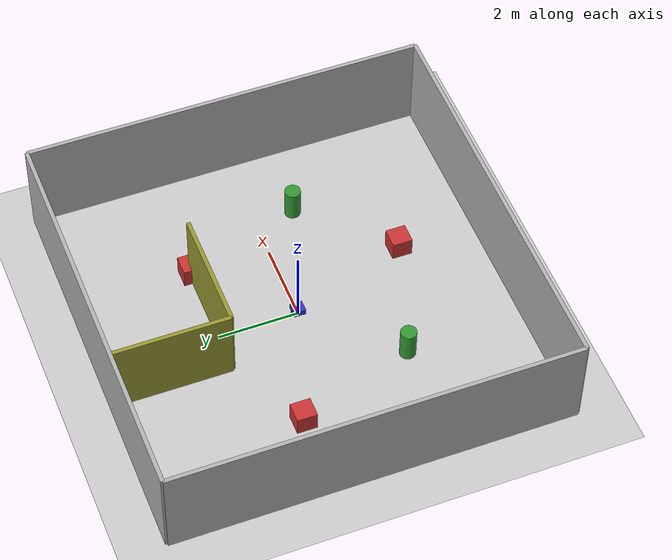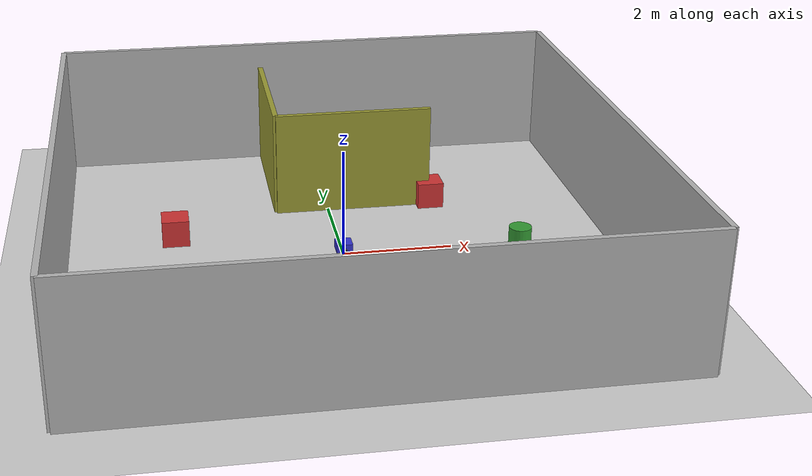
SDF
<?xml version="1.0"?>
<sdf version="1.9">
  <world name="slam_test">

    <!-- Physics -->
    <physics name="1ms" type="ignored">
      <max_step_size>0.001</max_step_size>
      <real_time_factor>1.0</real_time_factor>
    </physics>

    <!-- Plugins -->
    <plugin filename="gz-sim-physics-system" name="gz::sim::systems::Physics"/>
    <plugin filename="gz-sim-user-commands-system" name="gz::sim::systems::UserCommands"/>
    <plugin filename="gz-sim-scene-broadcaster-system" name="gz::sim::systems::SceneBroadcaster"/>
    <plugin filename="gz-sim-sensors-system" name="gz::sim::systems::Sensors">
      <render_engine>ogre2</render_engine>
    </plugin>
    <plugin filename="gz-sim-contact-system" name="gz::sim::systems::Contact"/>

    <!-- Sun -->
    <light type="directional" name="sun">
      <cast_shadows>true</cast_shadows>
      <pose>0 0 10 0 0 0</pose>
      <diffuse>0.8 0.8 0.8 1</diffuse>
      <specular>0.2 0.2 0.2 1</specular>
      <attenuation>
        <range>1000</range>
        <constant>0.9</constant>
        <linear>0.01</linear>
        <quadratic>0.001</quadratic>
      </attenuation>
      <direction>-0.5 0.1 -0.9</direction>
    </light>

    <!-- Ground plane -->
    <model name="ground_plane">
      <static>true</static>
      <link name="link">
        <collision name="collision">
          <geometry>
            <plane><normal>0 0 1</normal><size>100 100</size></plane>
          </geometry>
        </collision>
        <visual name="visual">
          <geometry>
            <plane><normal>0 0 1</normal><size>100 100</size></plane>
          </geometry>
          <material>
            <ambient>0.8 0.8 0.8 1</ambient>
            <diffuse>0.8 0.8 0.8 1</diffuse>
          </material>
        </visual>
      </link>
    </model>

    <!-- ========== Room walls (10m x 10m, centered at origin) ========== -->

    <!-- North wall -->
    <model name="wall_north">
      <static>true</static>
      <pose>0 5 1.25 0 0 0</pose>
      <link name="link">
        <collision name="collision">
          <geometry><box><size>10 0.1 2.5</size></box></geometry>
        </collision>
        <visual name="visual">
          <geometry><box><size>10 0.1 2.5</size></box></geometry>
          <material>
            <ambient>0.7 0.7 0.7 1</ambient>
            <diffuse>0.7 0.7 0.7 1</diffuse>
          </material>
        </visual>
      </link>
    </model>

    <!-- South wall -->
    <model name="wall_south">
      <static>true</static>
      <pose>0 -5 1.25 0 0 0</pose>
      <link name="link">
        <collision name="collision">
          <geometry><box><size>10 0.1 2.5</size></box></geometry>
        </collision>
        <visual name="visual">
          <geometry><box><size>10 0.1 2.5</size></box></geometry>
          <material>
            <ambient>0.7 0.7 0.7 1</ambient>
            <diffuse>0.7 0.7 0.7 1</diffuse>
          </material>
        </visual>
      </link>
    </model>

    <!-- East wall -->
    <model name="wall_east">
      <static>true</static>
      <pose>5 0 1.25 0 0 0</pose>
      <link name="link">
        <collision name="collision">
          <geometry><box><size>0.1 10 2.5</size></box></geometry>
        </collision>
        <visual name="visual">
          <geometry><box><size>0.1 10 2.5</size></box></geometry>
          <material>
            <ambient>0.7 0.7 0.7 1</ambient>
            <diffuse>0.7 0.7 0.7 1</diffuse>
          </material>
        </visual>
      </link>
    </model>

    <!-- West wall -->
    <model name="wall_west">
      <static>true</static>
      <pose>-5 0 1.25 0 0 0</pose>
      <link name="link">
        <collision name="collision">
          <geometry><box><size>0.1 10 2.5</size></box></geometry>
        </collision>
        <visual name="visual">
          <geometry><box><size>0.1 10 2.5</size></box></geometry>
          <material>
            <ambient>0.7 0.7 0.7 1</ambient>
            <diffuse>0.7 0.7 0.7 1</diffuse>
          </material>
        </visual>
      </link>
    </model>

    <!-- ========== Obstacles ========== -->

    <!-- Box 1 -->
    <model name="box1">
      <static>true</static>
      <pose>2 2 0.25 0 0 0</pose>
      <link name="link">
        <collision name="collision">
          <geometry><box><size>0.5 0.5 0.5</size></box></geometry>
        </collision>
        <visual name="visual">
          <geometry><box><size>0.5 0.5 0.5</size></box></geometry>
          <material>
            <ambient>0.8 0.2 0.2 1</ambient>
            <diffuse>0.8 0.2 0.2 1</diffuse>
          </material>
        </visual>
      </link>
    </model>

    <!-- Box 2 -->
    <model name="box2">
      <static>true</static>
      <pose>-3 1 0.25 0 0 0</pose>
      <link name="link">
        <collision name="collision">
          <geometry><box><size>0.5 0.5 0.5</size></box></geometry>
        </collision>
        <visual name="visual">
          <geometry><box><size>0.5 0.5 0.5</size></box></geometry>
          <material>
            <ambient>0.8 0.2 0.2 1</ambient>
            <diffuse>0.8 0.2 0.2 1</diffuse>
          </material>
        </visual>
      </link>
    </model>

    <!-- Box 3 -->
    <model name="box3">
      <static>true</static>
      <pose>1 -3 0.25 0 0 0</pose>
      <link name="link">
        <collision name="collision">
          <geometry><box><size>0.5 0.5 0.5</size></box></geometry>
        </collision>
        <visual name="visual">
          <geometry><box><size>0.5 0.5 0.5</size></box></geometry>
          <material>
            <ambient>0.8 0.2 0.2 1</ambient>
            <diffuse>0.8 0.2 0.2 1</diffuse>
          </material>
        </visual>
      </link>
    </model>

    <!-- Cylinder 1 -->
    <model name="cylinder1">
      <static>true</static>
      <pose>-2 -2 0.4 0 0 0</pose>
      <link name="link">
        <collision name="collision">
          <geometry><cylinder><radius>0.2</radius><length>0.8</length></cylinder></geometry>
        </collision>
        <visual name="visual">
          <geometry><cylinder><radius>0.2</radius><length>0.8</length></cylinder></geometry>
          <material>
            <ambient>0.2 0.6 0.2 1</ambient>
            <diffuse>0.2 0.6 0.2 1</diffuse>
          </material>
        </visual>
      </link>
    </model>

    <!-- Cylinder 2 -->
    <model name="cylinder2">
      <static>true</static>
      <pose>3 -1 0.4 0 0 0</pose>
      <link name="link">
        <collision name="collision">
          <geometry><cylinder><radius>0.2</radius><length>0.8</length></cylinder></geometry>
        </collision>
        <visual name="visual">
          <geometry><cylinder><radius>0.2</radius><length>0.8</length></cylinder></geometry>
          <material>
            <ambient>0.2 0.6 0.2 1</ambient>
            <diffuse>0.2 0.6 0.2 1</diffuse>
          </material>
        </visual>
      </link>
    </model>

    <!-- L-shaped inner wall -->
    <model name="l_wall">
      <static>true</static>
      <link name="link">

        <!-- Vertical segment -->
        <collision name="collision_v">
          <pose>-1 3.5 1.0 0 0 0</pose>
          <geometry><box><size>0.1 3.0 2.0</size></box></geometry>
        </collision>
        <visual name="visual_v">
          <pose>-1 3.5 1.0 0 0 0</pose>
          <geometry><box><size>0.1 3.0 2.0</size></box></geometry>
          <material>
            <ambient>0.6 0.6 0.2 1</ambient>
            <diffuse>0.6 0.6 0.2 1</diffuse>
          </material>
        </visual>

        <!-- Horizontal segment -->
        <collision name="collision_h">
          <pose>0.5 2.0 1.0 0 0 0</pose>
          <geometry><box><size>3.0 0.1 2.0</size></box></geometry>
        </collision>
        <visual name="visual_h">
          <pose>0.5 2.0 1.0 0 0 0</pose>
          <geometry><box><size>3.0 0.1 2.0</size></box></geometry>
          <material>
            <ambient>0.6 0.6 0.2 1</ambient>
            <diffuse>0.6 0.6 0.2 1</diffuse>
          </material>
        </visual>

      </link>
    </model>

    <!-- ========== Robot ========== -->
    <include>
      <uri>file:///home/hello/lidar-slam/models/sim_robot</uri>
      <name>sim_robot</name>
      <pose>0 0 0.075 0 0 0</pose>
    </include>

  </world>
</sdf>

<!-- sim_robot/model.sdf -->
<sdf version="1.9">
  <model name="sim_robot">
    <self_collide>false</self_collide>

    <!-- Chassis -->
    <link name="base_link">
      <pose>0 0 0.1 0 0 0</pose>
      <inertial>
        <mass>5.0</mass>
        <inertia>
          <ixx>0.028</ixx>
          <ixy>0</ixy>
          <ixz>0</ixz>
          <iyy>0.028</iyy>
          <iyz>0</iyz>
          <izz>0.045</izz>
        </inertia>
      </inertial>
      <collision name="chassis_collision">
        <geometry>
          <box><size>0.3 0.3 0.15</size></box>
        </geometry>
      </collision>
      <visual name="chassis_visual">
        <geometry>
          <box><size>0.3 0.3 0.15</size></box>
        </geometry>
        <material>
          <ambient>0.2 0.2 0.8 1</ambient>
          <diffuse>0.2 0.2 0.8 1</diffuse>
        </material>
      </visual>

      <!-- 2D LiDAR sensor (RPLIDAR S2L equivalent) -->
      <sensor name="lidar" type="gpu_lidar">
        <topic>/scan</topic>
        <update_rate>10</update_rate>
        <lidar>
          <scan>
            <horizontal>
              <samples>3600</samples>
              <resolution>1</resolution>
              <min_angle>0</min_angle>
              <max_angle>6.28318</max_angle>
            </horizontal>
          </scan>
          <range>
            <min>0.15</min>
            <max>16.0</max>
          </range>
        </lidar>
        <visualize>true</visualize>
      </sensor>
    </link>

    <!-- Left wheel -->
    <link name="left_wheel">
      <pose>0 0.16 0.05 -1.5707 0 0</pose>
      <inertial>
        <mass>0.5</mass>
        <inertia>
          <ixx>0.00028</ixx>
          <ixy>0</ixy>
          <ixz>0</ixz>
          <iyy>0.00028</iyy>
          <iyz>0</iyz>
          <izz>0.00028</izz>
        </inertia>
      </inertial>
      <collision name="left_wheel_collision">
        <geometry>
          <cylinder><radius>0.05</radius><length>0.02</length></cylinder>
        </geometry>
        <surface>
          <friction>
            <mu>1.0</mu>
            <mu2>1.0</mu2>
          </friction>
        </surface>
      </collision>
      <visual name="left_wheel_visual">
        <geometry>
          <cylinder><radius>0.05</radius><length>0.02</length></cylinder>
        </geometry>
        <material>
          <ambient>0.1 0.1 0.1 1</ambient>
          <diffuse>0.1 0.1 0.1 1</diffuse>
        </material>
      </visual>
    </link>

    <!-- Right wheel -->
    <link name="right_wheel">
      <pose>0 -0.16 0.05 -1.5707 0 0</pose>
      <inertial>
        <mass>0.5</mass>
        <inertia>
          <ixx>0.00028</ixx>
          <ixy>0</ixy>
          <ixz>0</ixz>
          <iyy>0.00028</iyy>
          <iyz>0</iyz>
          <izz>0.00028</izz>
        </inertia>
      </inertial>
      <collision name="right_wheel_collision">
        <geometry>
          <cylinder><radius>0.05</radius><length>0.02</length></cylinder>
        </geometry>
        <surface>
          <friction>
            <mu>1.0</mu>
            <mu2>1.0</mu2>
          </friction>
        </surface>
      </collision>
      <visual name="right_wheel_visual">
        <geometry>
          <cylinder><radius>0.05</radius><length>0.02</length></cylinder>
        </geometry>
        <material>
          <ambient>0.1 0.1 0.1 1</ambient>
          <diffuse>0.1 0.1 0.1 1</diffuse>
        </material>
      </visual>
    </link>

    <!-- Caster wheel (rear) -->
    <link name="caster">
      <pose>-0.1 0 0.025 0 0 0</pose>
      <inertial>
        <mass>0.2</mass>
        <inertia>
          <ixx>0.00003</ixx>
          <ixy>0</ixy>
          <ixz>0</ixz>
          <iyy>0.00003</iyy>
          <iyz>0</iyz>
          <izz>0.00003</izz>
        </inertia>
      </inertial>
      <collision name="caster_collision">
        <geometry>
          <sphere><radius>0.025</radius></sphere>
        </geometry>
        <surface>
          <friction>
            <mu>0.01</mu>
            <mu2>0.01</mu2>
          </friction>
        </surface>
      </collision>
      <visual name="caster_visual">
        <geometry>
          <sphere><radius>0.025</radius></sphere>
        </geometry>
        <material>
          <ambient>0.5 0.5 0.5 1</ambient>
          <diffuse>0.5 0.5 0.5 1</diffuse>
        </material>
      </visual>
    </link>

    <!-- Wheel joints -->
    <joint name="left_wheel_joint" type="revolute">
      <parent>base_link</parent>
      <child>left_wheel</child>
      <axis>
        <xyz>0 0 1</xyz>
      </axis>
    </joint>

    <joint name="right_wheel_joint" type="revolute">
      <parent>base_link</parent>
      <child>right_wheel</child>
      <axis>
        <xyz>0 0 1</xyz>
      </axis>
    </joint>

    <joint name="caster_joint" type="ball">
      <parent>base_link</parent>
      <child>caster</child>
    </joint>

    <!-- DiffDrive plugin -->
    <plugin filename="gz-sim-diff-drive-system"
            name="gz::sim::systems::DiffDrive">
      <left_joint>left_wheel_joint</left_joint>
      <right_joint>right_wheel_joint</right_joint>
      <wheel_separation>0.3</wheel_separation>
      <wheel_radius>0.05</wheel_radius>
      <max_linear_acceleration>1.0</max_linear_acceleration>
      <max_angular_acceleration>2.0</max_angular_acceleration>
      <velocity_command_timeout>0.8</velocity_command_timeout>
      <odom_publish_frequency>10</odom_publish_frequency>
      <topic>/cmd_vel</topic>
      <odom_topic>/odom</odom_topic>
      <tf_topic>/tf</tf_topic>
      <frame_id>odom</frame_id>
      <child_frame_id>base_link</child_frame_id>
    </plugin>

  </model>
</sdf>
